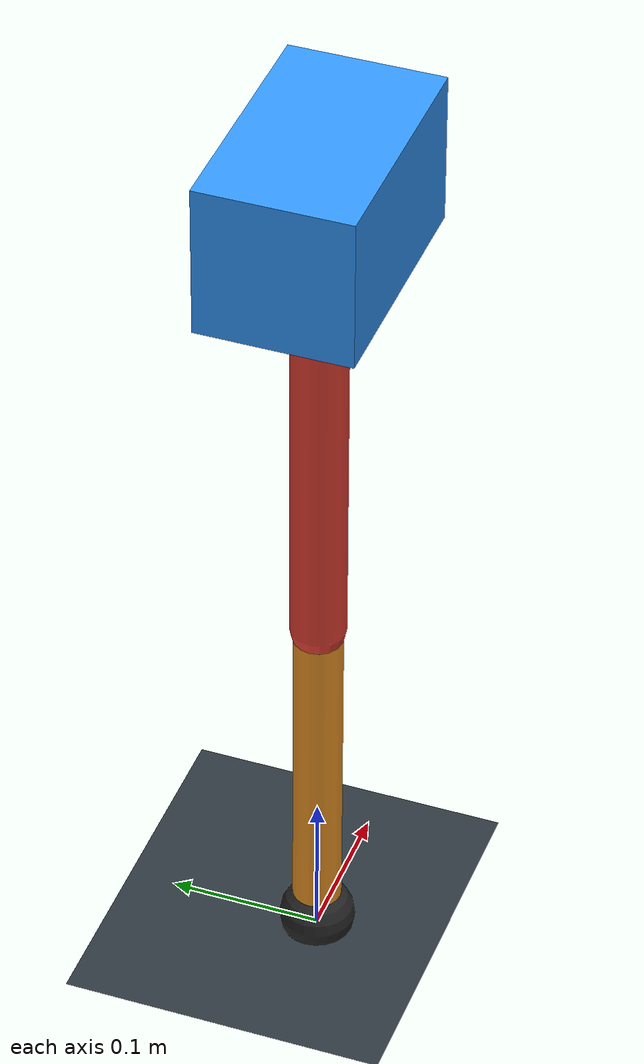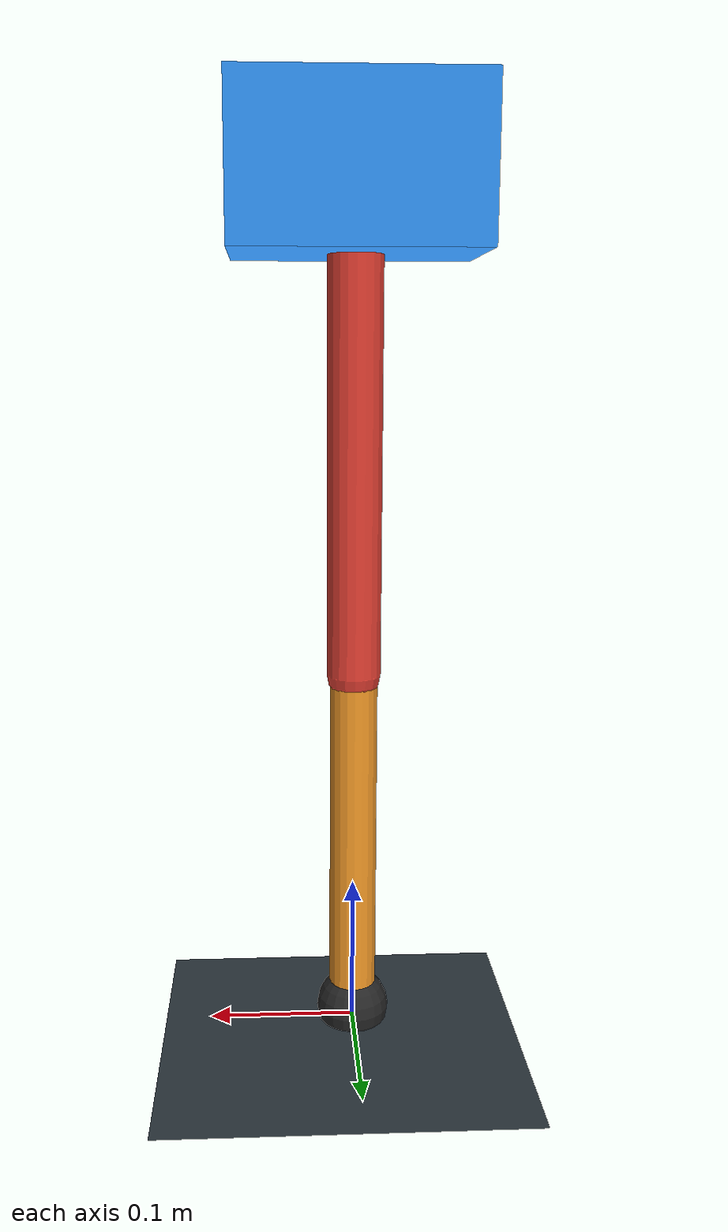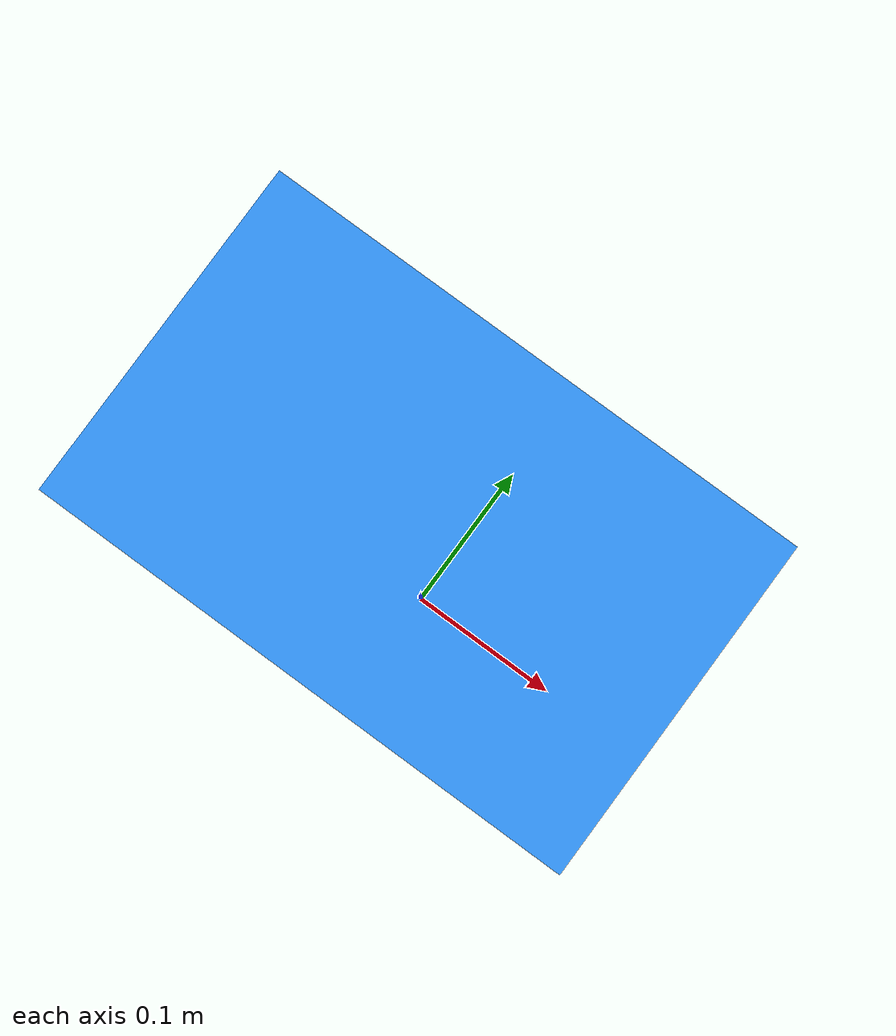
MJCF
<mujoco model="single_axis_two_bar">
  <compiler angle="radian" inertiafromgeom="true"/>
  <option timestep="0.001" integrator="implicitfast" gravity="0 0 -9.81"/>
  <default>
    <joint damping="0.08"/>
    <geom friction="1.2 0.01 0.0001" condim="3"/>
  </default>
  <worldbody>
    <geom name="floor" type="plane" size="5 5 0.1" rgba="0.18 0.22 0.25 1"/>
    <body name="carriage" pos="0 0 0.5727519120911605">
      <joint name="pole_slide" type="slide" axis="0 0 1"/>
      <geom name="payload" type="box" size="0.08 0.05 0.05" mass="2.1394286119650476" rgba="0.2 0.6 1 1"/>
      <body name="thigh" pos="0 0 0">
        <joint name="hip" type="hinge" axis="0 1 0"/>
        <geom name="thigh_link" type="capsule" fromto="0 0 0 0 0 -0.32257722036276165" size="0.018" mass="0.22984053199036297" rgba="0.9 0.25 0.2 1"/>
        <body name="shank" pos="0 0 -0.32257722036276165">
          <joint name="knee" type="hinge" axis="0 1 0"/>
          <geom name="shank_link" type="capsule" fromto="0 0 0 0 0 -0.24211547251472337" size="0.016" mass="0.172510473440443" rgba="0.95 0.6 0.15 1"/>
          <geom name="foot" type="sphere" pos="0 0 -0.24211547251472337" size="0.025" mass="0.03" rgba="0.15 0.15 0.15 1"/>
          <site name="toe" pos="0 0 -0.24211547251472337" size="0.008"/>
        </body>
      </body>
    </body>
  </worldbody>
  <actuator>
    <motor name="hip_motor" joint="hip" ctrlrange="-13.380348688092425 13.380348688092425"/>
    <motor name="knee_motor" joint="knee" ctrlrange="-28.513470376421775 28.513470376421775"/>
  </actuator>
</mujoco>
